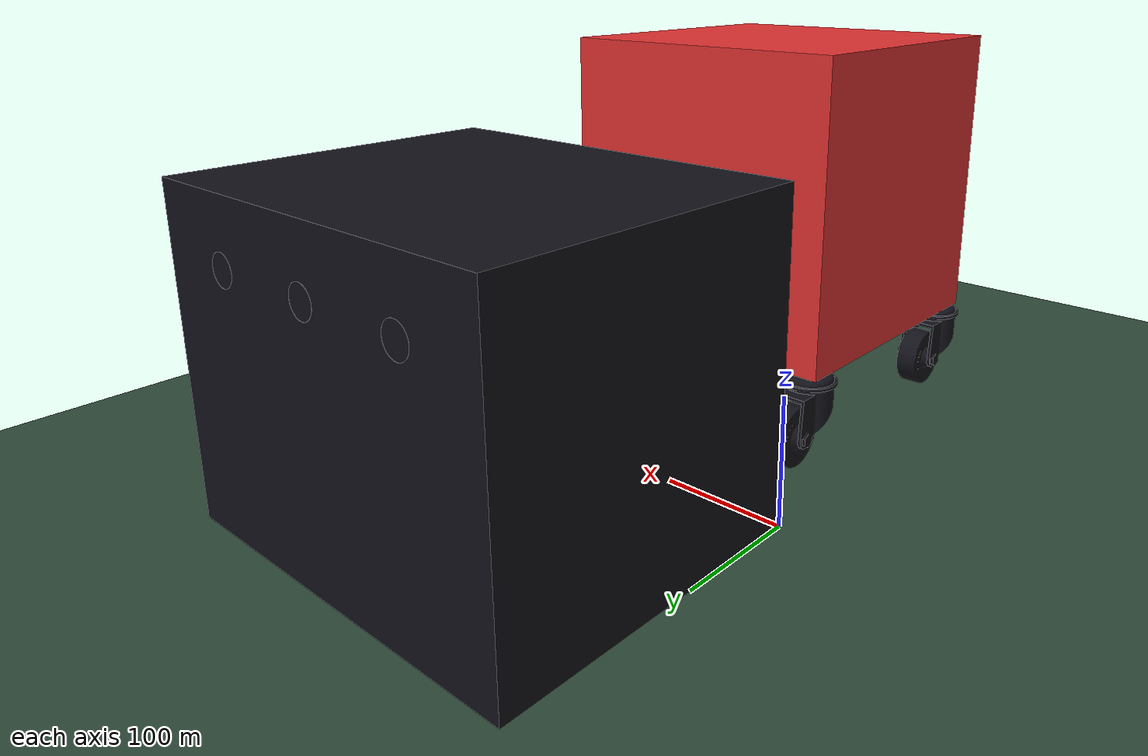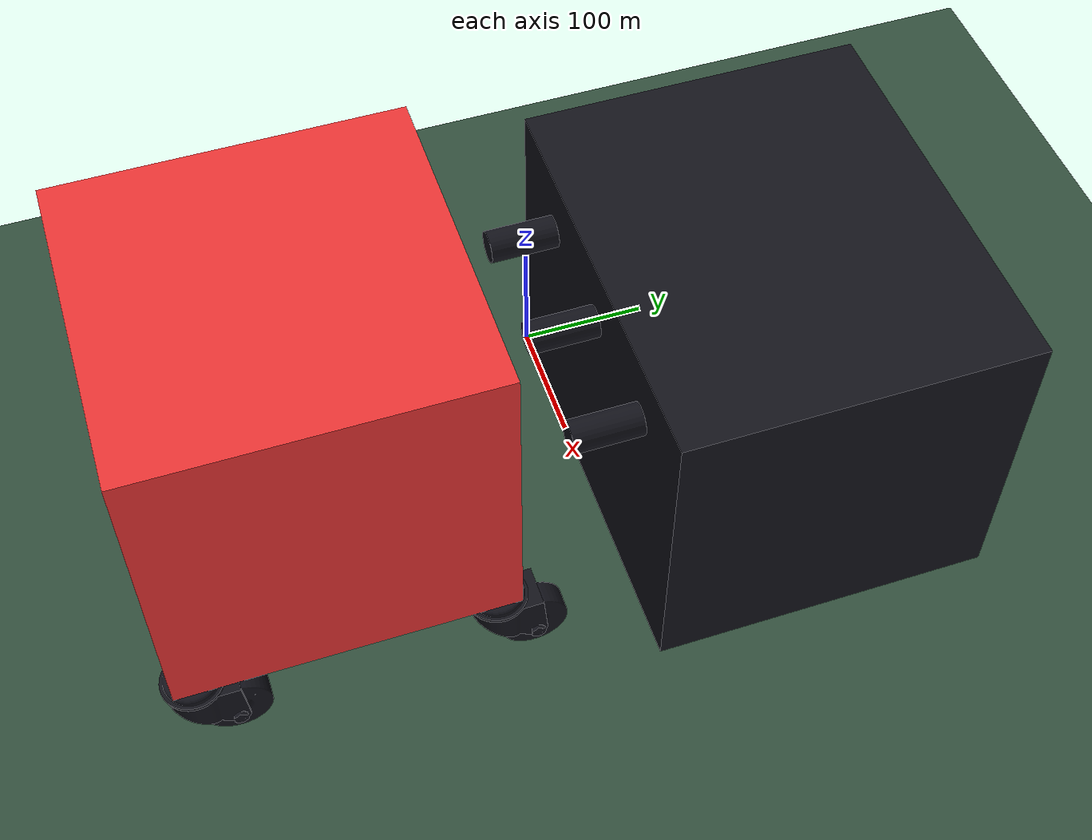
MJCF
<mujoco model="pushing">
  <compiler inertiafromgeom='true' angle="radian" meshdir="meshes/" />

  <option integrator="RK4" solver="PGS" timestep="0.001" gravity="0 0 -9.81" iterations="50"/>

  <asset>
    <mesh file="push_box.stl"/>
    <mesh file="pushing_hand.stl"/>
    <mesh file="caster_wheel.stl"/>
    <mesh file="caster_middle.stl"/>
    <mesh file="caster_top.stl"/>

    <texture type="skybox" builtin="gradient" rgb1=".2 .3 .4" rgb2="1 1 1"
      width="100" height="100"/>
    <texture name="groundplane" type="2d" builtin="checker" rgb1=".25 .26 .25"
      rgb2=".22 .22 .22" width="100" height="100" mark="none" markrgb=".8 .8 .8"/>
    <texture name="greenground" type="2d" builtin="gradient" rgb1="0.19 0.28 0.23"
      rgb2="0 0 0" width="1000" height="1000" mark="none" markrgb=".8 .8 .8"/>
    <material name="MatViz" specular="1" shininess=".1" reflectance="0.5" rgba=".07 .07 .1 1"/>
    <material name="MatGnd" texture="groundplane"  texrepeat="5 5" specular="1" shininess="0" reflectance="0"/>

  </asset>

  <default>
    <geom contype='1' conaffinity='1' condim='3' margin="0.001" />

    <joint limited="false" damping="0" armature=".01"/>

    <default class ="vizNcoll">
      <geom material="MatViz" type="mesh" condim="3" contype="1" conaffinity="1" margin="0.001"/>
      <joint pos="0 0 0" type="hinge"/>
    </default>
    <default class ="ground">
      <geom type="plane" margin="0.001" contype="1" friction="10"/>
    </default>
  </default>

  <worldbody>

    <light cutoff="200" diffuse="1.2 1.2 1.2" dir="-0 0 -1.3" directional="true" exponent="1" pos="0 0 1.3" specular=".1 .1 .1"/>

    <camera name="view1" pos="0 0 2.0" zaxis="0 0 1" fovy="45" ipd="0.068"/>
    <camera name="view2" pos="1.0 0.7 0.3" xyaxes="-1 1 0 0 0 1" fovy="45" ipd="0.068"/>

    <geom name="ground" class="ground" type='plane' pos="0 0 0" rgba="0.19 0.30 0.23 1" size="2000 2000 1000"/>

    <body name="push_box" childclass="vizNcoll" pos="0 0 0">
      <geom mesh="push_box"/>
      <body name="pushing_hand_1" childclass="vizNcoll" pos="68 260 200" axisangle="1 0 0 1.570796">
        <joint axis="0 0 1" limited="true" name="slider_1" pos="68 260 200" range="-100 100" type="slide"/>
        <geom mesh="pushing_hand"/>
      </body>

      <body name="pushing_hand_2" childclass="vizNcoll" pos="158 260 200" axisangle="1 0 0 1.570796">
        <joint axis="0 0 1" limited="true" name="slider_2" pos="158 260 200" range="-100 100" type="slide"/>
        <geom mesh="pushing_hand"/>
      </body>

      <body name="pushing_hand_3" childclass="vizNcoll" pos="248 260 200" axisangle="1 0 0 1.570796">
        <joint axis="0 0 1" limited="true" name="slider_3" pos="248 260 200" range="-100 100" type="slide"/>
        <geom mesh="pushing_hand"/>
      </body>

    </body>

    <body name="object_box" pos="158 -220 195" axisangle="0 0 1 3.141592">
      <joint name="fixed" axis="0 0 -1" />
      <body name="caster_top_1" childclass="vizNcoll" pos="110 110 -170" axisangle="1 0 0 1.570796">
        <joint name="caster_top_1" axis="0 -1 0" />
        <body name="caster_middle_1" childclass="vizNcoll" pos="0 0 0">
          <joint name="caster_middle_1" axis="-1 0 0" />
          <body name="caster_wheel_1" childclass="vizNcoll" pos="0 0 0">
            <geom mesh="caster_wheel" contype="1" conaffinity="1" condim="3"/>
          </body>
          <geom mesh="caster_middle" contype="1" conaffinity="1" condim="3"/>
        </body>
        <geom mesh="caster_top" contype="1" conaffinity="1" condim="3"/>
      </body>
      <body name="caster_top_2" childclass="vizNcoll" pos="-110 110 -170" axisangle="1 0 0 1.570796">
        <joint name="caster_top_2" axis="0 -1 0" />
        <body name="caster_middle_2" childclass="vizNcoll" pos="0 0 0">
          <joint name="caster_middle_2" axis="-1 0 0" />
          <body name="caster_wheel_2" childclass="vizNcoll" pos="0 0 0">
            <geom mesh="caster_wheel" contype="1" conaffinity="1" condim="3"/>
          </body>
          <geom mesh="caster_middle" contype="1" conaffinity="1" condim="3"/>
        </body>
        <geom mesh="caster_top" contype="1" conaffinity="1" condim="3"/>
      </body>
      <body name="caster_top_3" childclass="vizNcoll" pos="110 -110 -170" axisangle="1 0 0 1.570796">
        <joint name="caster_top_3" axis="0 -1 0" />
        <body name="caster_middle_3" childclass="vizNcoll" pos="0 0 0">
          <joint name="caster_middle_3" axis="-1 0 0" />
          <body name="caster_wheel_3" childclass="vizNcoll" pos="0 0 0">
            <geom mesh="caster_wheel" contype="1" conaffinity="1" condim="3"/>
          </body>
          <geom mesh="caster_middle" contype="1" conaffinity="1" condim="3"/>
        </body>
        <geom mesh="caster_top" contype="1" conaffinity="1" condim="3"/>
      </body>
      <body name="caster_top_4" childclass="vizNcoll" pos="-110 -110 -170" axisangle="1 0 0 1.570796">
        <joint name="caster_top_4" axis="0 -1 0" />
        <body name="caster_middle_4" childclass="vizNcoll" pos="0 0 0">
          <joint name="caster_middle_4" axis="-1 0 0" />
          <body name="caster_wheel_4" childclass="vizNcoll" pos="0 0 0">
            <geom mesh="caster_wheel" contype="1" conaffinity="1" condim="3"/>
          </body>
          <geom mesh="caster_middle" contype="1" conaffinity="1" condim="3"/>
        </body>
        <geom mesh="caster_top" contype="1" conaffinity="1" condim="3"/>
      </body>
      <geom name="object_box" rgba="0.9 0.2 0.2 1" size="125 125 125" type="box" contype="1" conaffinity="1" condim="3"/>

    </body>

  </worldbody>

  <!--  ================= Position actuators ================= /-->
    <!--  ================= Velocity actuators ================= /-->

  <actuator>
    <motor gear="100" joint="slider_1" name="slide_1"/>
    <motor gear="100" joint="slider_2" name="slide_2"/>
    <motor gear="100" joint="slider_3" name="slide_3"/>
    <velocity joint='caster_top_1'  name='Acaster_top_1' kv="25" ctrlrange="-1 1"/>
    <velocity joint='caster_middle_1'  name='Acaster_middle_1' kv="25" ctrlrange="-1 1"/>
    <velocity joint='caster_top_2'  name='Acaster_top_2' kv="25" ctrlrange="-1 1"/>
    <velocity joint='caster_middle_2'  name='Acaster_middle_2' kv="25" ctrlrange="-1 1"/>
    <velocity joint='caster_top_3'  name='Acaster_top_3' kv="25" ctrlrange="-1 1"/>
    <velocity joint='caster_middle_3'  name='Acaster_middle_3' kv="25" ctrlrange="-1 1"/>
    <velocity joint='caster_top_4'  name='Acaster_top_4' kv="25" ctrlrange="-1 1"/>
    <velocity joint='caster_middle_4'  name='Acaster_middle_4' kv="25" ctrlrange="-1 1"/>
  </actuator>

</mujoco>
